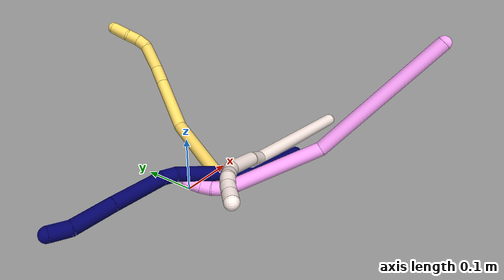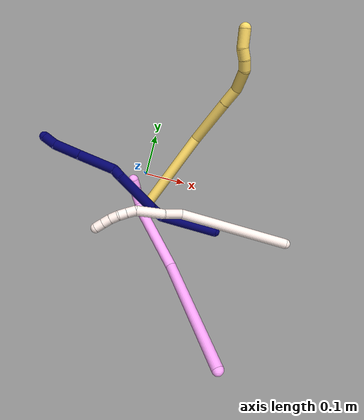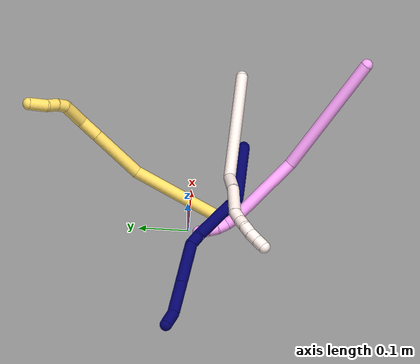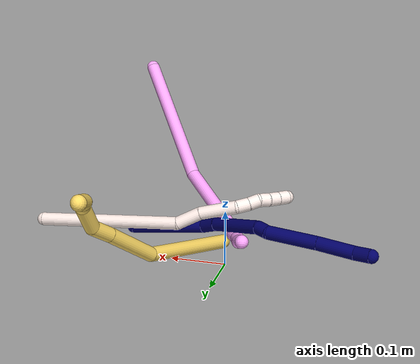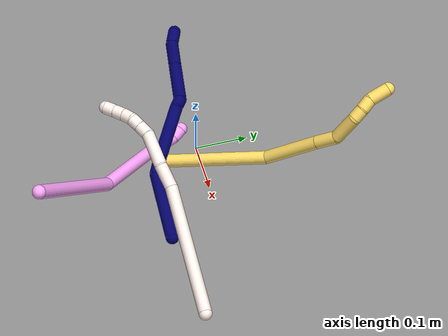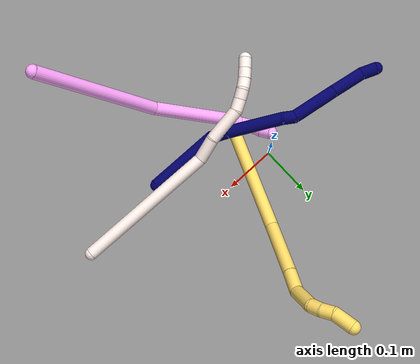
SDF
<sdf version="1.7">
 <world name="default">
  <model name="4">
   <static>0</static>
   <link name="4">
    <collision name="collision-cylinder-e_1_1_4">
     <pose>-0.043225 0.025258 -0.119558 -2.93339 -0.339998 2.04807</pose>
     <geometry><cylinder><radius>0.0125</radius><length>0.259233</length></cylinder></geometry>
     <surface>
      <friction><ode><mu>1.16</mu><mu2>1.16</mu2><slip1>0</slip1><slip2>0</slip2></ode></friction>
      <contact><ode><kp>1e+06</kp><kd>1</kd><max_vel>0</max_vel><min_depth>0.001</min_depth></ode></contact>
     </surface>
    </collision>
    <visual name="visual-cylinder-e_1_1_4">
     <pose>-0.043225 0.025258 -0.119558 -2.93339 -0.339998 2.04807</pose>
     <geometry><cylinder><radius>0.0125</radius><length>0.259233</length></cylinder></geometry>
     <material><ambient>1 0.65098 0.996078 1</ambient></material>
    </visual>
    <collision name="collision-cylinder-e_2_4_5">
     <pose>-0.110018 0.093093 -0.300253 -2.53328 -0.306372 0.914249</pose>
     <geometry><cylinder><radius>0.0125</radius><length>0.156281</length></cylinder></geometry>
     <surface>
      <friction><ode><mu>1.16</mu><mu2>1.16</mu2><slip1>0</slip1><slip2>0</slip2></ode></friction>
      <contact><ode><kp>1e+06</kp><kd>1</kd><max_vel>0</max_vel><min_depth>0.001</min_depth></ode></contact>
     </surface>
    </collision>
    <visual name="visual-cylinder-e_2_4_5">
     <pose>-0.110018 0.093093 -0.300253 -2.53328 -0.306372 0.914249</pose>
     <geometry><cylinder><radius>0.0125</radius><length>0.156281</length></cylinder></geometry>
     <material><ambient>1 0.65098 0.996078 1</ambient></material>
    </visual>
    <collision name="collision-cylinder-e_3_5_6">
     <pose>-0.134772 0.14065 -0.370079 -2.62107 -0.117951 0.436375</pose>
     <geometry><cylinder><radius>0.0125</radius><length>0.02017</length></cylinder></geometry>
     <surface>
      <friction><ode><mu>1.16</mu><mu2>1.16</mu2><slip1>0</slip1><slip2>0</slip2></ode></friction>
      <contact><ode><kp>1e+06</kp><kd>1</kd><max_vel>0</max_vel><min_depth>0.001</min_depth></ode></contact>
     </surface>
    </collision>
    <visual name="visual-cylinder-e_3_5_6">
     <pose>-0.134772 0.14065 -0.370079 -2.62107 -0.117951 0.436375</pose>
     <geometry><cylinder><radius>0.0125</radius><length>0.02017</length></cylinder></geometry>
     <material><ambient>1 0.65098 0.996078 1</ambient></material>
    </visual>
    <collision name="collision-cylinder-e_4_6_7">
     <pose>-0.136286 0.154871 -0.385651 -2.21098 -0.02836 0.056475</pose>
     <geometry><cylinder><radius>0.0125</radius><length>0.023053</length></cylinder></geometry>
     <surface>
      <friction><ode><mu>1.16</mu><mu2>1.16</mu2><slip1>0</slip1><slip2>0</slip2></ode></friction>
      <contact><ode><kp>1e+06</kp><kd>1</kd><max_vel>0</max_vel><min_depth>0.001</min_depth></ode></contact>
     </surface>
    </collision>
    <visual name="visual-cylinder-e_4_6_7">
     <pose>-0.136286 0.154871 -0.385651 -2.21098 -0.02836 0.056475</pose>
     <geometry><cylinder><radius>0.0125</radius><length>0.023053</length></cylinder></geometry>
     <material><ambient>1 0.65098 0.996078 1</ambient></material>
    </visual>
    <collision name="collision-cylinder-e_5_7_8">
     <pose>-0.134609 0.1719 -0.398523 -2.22642 0.201114 -0.404186</pose>
     <geometry><cylinder><radius>0.0125</radius><length>0.020055</length></cylinder></geometry>
     <surface>
      <friction><ode><mu>1.16</mu><mu2>1.16</mu2><slip1>0</slip1><slip2>0</slip2></ode></friction>
      <contact><ode><kp>1e+06</kp><kd>1</kd><max_vel>0</max_vel><min_depth>0.001</min_depth></ode></contact>
     </surface>
    </collision>
    <visual name="visual-cylinder-e_5_7_8">
     <pose>-0.134609 0.1719 -0.398523 -2.22642 0.201114 -0.404186</pose>
     <geometry><cylinder><radius>0.0125</radius><length>0.020055</length></cylinder></geometry>
     <material><ambient>1 0.65098 0.996078 1</ambient></material>
    </visual>
    <collision name="collision-cylinder-e_6_8_2">
     <pose>-0.131169 0.189663 -0.40781 -1.88997 0.135969 -0.18787</pose>
     <geometry><cylinder><radius>0.0125</radius><length>0.021207</length></cylinder></geometry>
     <surface>
      <friction><ode><mu>1.16</mu><mu2>1.16</mu2><slip1>0</slip1><slip2>0</slip2></ode></friction>
      <contact><ode><kp>1e+06</kp><kd>1</kd><max_vel>0</max_vel><min_depth>0.001</min_depth></ode></contact>
     </surface>
    </collision>
    <visual name="visual-cylinder-e_6_8_2">
     <pose>-0.131169 0.189663 -0.40781 -1.88997 0.135969 -0.18787</pose>
     <geometry><cylinder><radius>0.0125</radius><length>0.021207</length></cylinder></geometry>
     <material><ambient>1 0.65098 0.996078 1</ambient></material>
    </visual>
    <collision name="collision-sphere-2">
     <pose>-0.129732 0.199638 -0.411106 0 -0 0</pose>
     <geometry><sphere><radius>0.0125</radius></sphere></geometry>
     <surface>
      <friction><ode><mu>1.16</mu><mu2>1.16</mu2><slip1>0</slip1><slip2>0</slip2></ode></friction>
      <contact><ode><kp>1e+06</kp><kd>1</kd><max_vel>0</max_vel><min_depth>0.001</min_depth></ode></contact>
     </surface>
    </collision>
    <visual name="visual-sphere-2">
     <pose>-0.129732 0.199638 -0.411106 0 -0 0</pose>
     <geometry><sphere><radius>0.0125</radius></sphere></geometry>
     <material><ambient>1 0.65098 0.996078 1</ambient></material>
    </visual>
    <collision name="collision-sphere-4">
     <pose>-0.08645 0.050517 -0.239116 0 -0 0</pose>
     <geometry><sphere><radius>0.0125</radius></sphere></geometry>
     <surface>
      <friction><ode><mu>1.16</mu><mu2>1.16</mu2><slip1>0</slip1><slip2>0</slip2></ode></friction>
      <contact><ode><kp>1e+06</kp><kd>1</kd><max_vel>0</max_vel><min_depth>0.001</min_depth></ode></contact>
     </surface>
    </collision>
    <visual name="visual-sphere-4">
     <pose>-0.08645 0.050517 -0.239116 0 -0 0</pose>
     <geometry><sphere><radius>0.0125</radius></sphere></geometry>
     <material><ambient>1 0.65098 0.996078 1</ambient></material>
    </visual>
    <collision name="collision-sphere-1">
     <geometry><sphere><radius>0.0125</radius></sphere></geometry>
     <surface>
      <friction><ode><mu>1.16</mu><mu2>1.16</mu2><slip1>0</slip1><slip2>0</slip2></ode></friction>
      <contact><ode><kp>1e+06</kp><kd>1</kd><max_vel>0</max_vel><min_depth>0.001</min_depth></ode></contact>
     </surface>
    </collision>
    <visual name="visual-sphere-1">
     <geometry><sphere><radius>0.0125</radius></sphere></geometry>
     <material><ambient>1 0.65098 0.996078 1</ambient></material>
    </visual>
    <collision name="collision-sphere-8">
     <pose>-0.132606 0.179688 -0.404513 0 -0 0</pose>
     <geometry><sphere><radius>0.0125</radius></sphere></geometry>
     <surface>
      <friction><ode><mu>1.16</mu><mu2>1.16</mu2><slip1>0</slip1><slip2>0</slip2></ode></friction>
      <contact><ode><kp>1e+06</kp><kd>1</kd><max_vel>0</max_vel><min_depth>0.001</min_depth></ode></contact>
     </surface>
    </collision>
    <visual name="visual-sphere-8">
     <pose>-0.132606 0.179688 -0.404513 0 -0 0</pose>
     <geometry><sphere><radius>0.0125</radius></sphere></geometry>
     <material><ambient>1 0.65098 0.996078 1</ambient></material>
    </visual>
    <collision name="collision-sphere-5">
     <pose>-0.133585 0.135669 -0.361391 0 -0 0</pose>
     <geometry><sphere><radius>0.0125</radius></sphere></geometry>
     <surface>
      <friction><ode><mu>1.16</mu><mu2>1.16</mu2><slip1>0</slip1><slip2>0</slip2></ode></friction>
      <contact><ode><kp>1e+06</kp><kd>1</kd><max_vel>0</max_vel><min_depth>0.001</min_depth></ode></contact>
     </surface>
    </collision>
    <visual name="visual-sphere-5">
     <pose>-0.133585 0.135669 -0.361391 0 -0 0</pose>
     <geometry><sphere><radius>0.0125</radius></sphere></geometry>
     <material><ambient>1 0.65098 0.996078 1</ambient></material>
    </visual>
    <collision name="collision-sphere-6">
     <pose>-0.135959 0.145631 -0.378768 0 -0 0</pose>
     <geometry><sphere><radius>0.0125</radius></sphere></geometry>
     <surface>
      <friction><ode><mu>1.16</mu><mu2>1.16</mu2><slip1>0</slip1><slip2>0</slip2></ode></friction>
      <contact><ode><kp>1e+06</kp><kd>1</kd><max_vel>0</max_vel><min_depth>0.001</min_depth></ode></contact>
     </surface>
    </collision>
    <visual name="visual-sphere-6">
     <pose>-0.135959 0.145631 -0.378768 0 -0 0</pose>
     <geometry><sphere><radius>0.0125</radius></sphere></geometry>
     <material><ambient>1 0.65098 0.996078 1</ambient></material>
    </visual>
    <collision name="collision-sphere-7">
     <pose>-0.136612 0.164112 -0.392533 0 -0 0</pose>
     <geometry><sphere><radius>0.0125</radius></sphere></geometry>
     <surface>
      <friction><ode><mu>1.16</mu><mu2>1.16</mu2><slip1>0</slip1><slip2>0</slip2></ode></friction>
      <contact><ode><kp>1e+06</kp><kd>1</kd><max_vel>0</max_vel><min_depth>0.001</min_depth></ode></contact>
     </surface>
    </collision>
    <visual name="visual-sphere-7">
     <pose>-0.136612 0.164112 -0.392533 0 -0 0</pose>
     <geometry><sphere><radius>0.0125</radius></sphere></geometry>
     <material><ambient>1 0.65098 0.996078 1</ambient></material>
    </visual>
    <inertial>
     <pose>-0.079481 0.069947 -0.221826 0 -0 0</pose>
     <mass>0.5</mass>
     <inertia><ixx>0.00102</ixx><ixy>0</ixy><ixz>0</ixz><iyy>0.002109</iyy><iyz>0</iyz><izz>8.6e-05</izz></inertia>
    </inertial>
   </link>
   <pose>0.242839 -0.339755 0.269644 0.658021 -0.306985 0.551234</pose>
  </model>
  <model name="5">
   <static>0</static>
   <link name="5">
    <collision name="collision-cylinder-e_1_1_4">
     <pose>-0.014872 0.02398 0.099134 -0.237331 -0.144793 0.017293</pose>
     <geometry><cylinder><radius>0.0125</radius><length>0.206144</length></cylinder></geometry>
     <surface>
      <friction><ode><mu>1.16</mu><mu2>1.16</mu2><slip1>0</slip1><slip2>0</slip2></ode></friction>
      <contact><ode><kp>1e+06</kp><kd>1</kd><max_vel>0</max_vel><min_depth>0.001</min_depth></ode></contact>
     </surface>
    </collision>
    <visual name="visual-cylinder-e_1_1_4">
     <pose>-0.014872 0.02398 0.099134 -0.237331 -0.144793 0.017293</pose>
     <geometry><cylinder><radius>0.0125</radius><length>0.206144</length></cylinder></geometry>
     <material><ambient>1 0.858824 0.4 1</ambient></material>
    </visual>
    <collision name="collision-cylinder-e_2_4_5">
     <pose>-0.015406 0.061562 0.251554 -0.249947 0.255045 -0.032213</pose>
     <geometry><cylinder><radius>0.0125</radius><length>0.113666</length></cylinder></geometry>
     <surface>
      <friction><ode><mu>1.16</mu><mu2>1.16</mu2><slip1>0</slip1><slip2>0</slip2></ode></friction>
      <contact><ode><kp>1e+06</kp><kd>1</kd><max_vel>0</max_vel><min_depth>0.001</min_depth></ode></contact>
     </surface>
    </collision>
    <visual name="visual-cylinder-e_2_4_5">
     <pose>-0.015406 0.061562 0.251554 -0.249947 0.255045 -0.032213</pose>
     <geometry><cylinder><radius>0.0125</radius><length>0.113666</length></cylinder></geometry>
     <material><ambient>1 0.858824 0.4 1</ambient></material>
    </visual>
    <collision name="collision-cylinder-e_3_5_6">
     <pose>0.003505 0.080648 0.324633 -0.270235 0.219067 -0.029899</pose>
     <geometry><cylinder><radius>0.0125</radius><length>0.042084</length></cylinder></geometry>
     <surface>
      <friction><ode><mu>1.16</mu><mu2>1.16</mu2><slip1>0</slip1><slip2>0</slip2></ode></friction>
      <contact><ode><kp>1e+06</kp><kd>1</kd><max_vel>0</max_vel><min_depth>0.001</min_depth></ode></contact>
     </surface>
    </collision>
    <visual name="visual-cylinder-e_3_5_6">
     <pose>0.003505 0.080648 0.324633 -0.270235 0.219067 -0.029899</pose>
     <geometry><cylinder><radius>0.0125</radius><length>0.042084</length></cylinder></geometry>
     <material><ambient>1 0.858824 0.4 1</ambient></material>
    </visual>
    <collision name="collision-cylinder-e_4_6_7">
     <pose>0.023867 0.08497 0.366745 0.051995 0.615087 0.016518</pose>
     <geometry><cylinder><radius>0.0125</radius><length>0.054726</length></cylinder></geometry>
     <surface>
      <friction><ode><mu>1.16</mu><mu2>1.16</mu2><slip1>0</slip1><slip2>0</slip2></ode></friction>
      <contact><ode><kp>1e+06</kp><kd>1</kd><max_vel>0</max_vel><min_depth>0.001</min_depth></ode></contact>
     </surface>
    </collision>
    <visual name="visual-cylinder-e_4_6_7">
     <pose>0.023867 0.08497 0.366745 0.051995 0.615087 0.016518</pose>
     <geometry><cylinder><radius>0.0125</radius><length>0.054726</length></cylinder></geometry>
     <material><ambient>1 0.858824 0.4 1</ambient></material>
    </visual>
    <collision name="collision-cylinder-e_5_7_8">
     <pose>0.042808 0.079197 0.398573 0.451467 0.289786 0.066993</pose>
     <geometry><cylinder><radius>0.0125</radius><length>0.022058</length></cylinder></geometry>
     <surface>
      <friction><ode><mu>1.16</mu><mu2>1.16</mu2><slip1>0</slip1><slip2>0</slip2></ode></friction>
      <contact><ode><kp>1e+06</kp><kd>1</kd><max_vel>0</max_vel><min_depth>0.001</min_depth></ode></contact>
     </surface>
    </collision>
    <visual name="visual-cylinder-e_5_7_8">
     <pose>0.042808 0.079197 0.398573 0.451467 0.289786 0.066993</pose>
     <geometry><cylinder><radius>0.0125</radius><length>0.022058</length></cylinder></geometry>
     <material><ambient>1 0.858824 0.4 1</ambient></material>
    </visual>
    <collision name="collision-cylinder-e_6_8_9">
     <pose>0.04786 0.067761 0.417451 0.629684 0.162551 0.053043</pose>
     <geometry><cylinder><radius>0.0125</radius><length>0.02349</length></cylinder></geometry>
     <surface>
      <friction><ode><mu>1.16</mu><mu2>1.16</mu2><slip1>0</slip1><slip2>0</slip2></ode></friction>
      <contact><ode><kp>1e+06</kp><kd>1</kd><max_vel>0</max_vel><min_depth>0.001</min_depth></ode></contact>
     </surface>
    </collision>
    <visual name="visual-cylinder-e_6_8_9">
     <pose>0.04786 0.067761 0.417451 0.629684 0.162551 0.053043</pose>
     <geometry><cylinder><radius>0.0125</radius><length>0.02349</length></cylinder></geometry>
     <material><ambient>1 0.858824 0.4 1</ambient></material>
    </visual>
    <collision name="collision-cylinder-e_7_9_2">
     <pose>0.049256 0.055109 0.444807 0.313256 -0.026686 -0.004215</pose>
     <geometry><cylinder><radius>0.0125</radius><length>0.037833</length></cylinder></geometry>
     <surface>
      <friction><ode><mu>1.16</mu><mu2>1.16</mu2><slip1>0</slip1><slip2>0</slip2></ode></friction>
      <contact><ode><kp>1e+06</kp><kd>1</kd><max_vel>0</max_vel><min_depth>0.001</min_depth></ode></contact>
     </surface>
    </collision>
    <visual name="visual-cylinder-e_7_9_2">
     <pose>0.049256 0.055109 0.444807 0.313256 -0.026686 -0.004215</pose>
     <geometry><cylinder><radius>0.0125</radius><length>0.037833</length></cylinder></geometry>
     <material><ambient>1 0.858824 0.4 1</ambient></material>
    </visual>
    <collision name="collision-sphere-2">
     <pose>0.048752 0.049281 0.462796 0 -0 0</pose>
     <geometry><sphere><radius>0.0125</radius></sphere></geometry>
     <surface>
      <friction><ode><mu>1.16</mu><mu2>1.16</mu2><slip1>0</slip1><slip2>0</slip2></ode></friction>
      <contact><ode><kp>1e+06</kp><kd>1</kd><max_vel>0</max_vel><min_depth>0.001</min_depth></ode></contact>
     </surface>
    </collision>
    <visual name="visual-sphere-2">
     <pose>0.048752 0.049281 0.462796 0 -0 0</pose>
     <geometry><sphere><radius>0.0125</radius></sphere></geometry>
     <material><ambient>1 0.858824 0.4 1</ambient></material>
    </visual>
    <collision name="collision-sphere-9">
     <pose>0.049761 0.060936 0.426818 0 -0 0</pose>
     <geometry><sphere><radius>0.0125</radius></sphere></geometry>
     <surface>
      <friction><ode><mu>1.16</mu><mu2>1.16</mu2><slip1>0</slip1><slip2>0</slip2></ode></friction>
      <contact><ode><kp>1e+06</kp><kd>1</kd><max_vel>0</max_vel><min_depth>0.001</min_depth></ode></contact>
     </surface>
    </collision>
    <visual name="visual-sphere-9">
     <pose>0.049761 0.060936 0.426818 0 -0 0</pose>
     <geometry><sphere><radius>0.0125</radius></sphere></geometry>
     <material><ambient>1 0.858824 0.4 1</ambient></material>
    </visual>
    <collision name="collision-sphere-4">
     <pose>-0.029744 0.047959 0.198269 0 -0 0</pose>
     <geometry><sphere><radius>0.0125</radius></sphere></geometry>
     <surface>
      <friction><ode><mu>1.16</mu><mu2>1.16</mu2><slip1>0</slip1><slip2>0</slip2></ode></friction>
      <contact><ode><kp>1e+06</kp><kd>1</kd><max_vel>0</max_vel><min_depth>0.001</min_depth></ode></contact>
     </surface>
    </collision>
    <visual name="visual-sphere-4">
     <pose>-0.029744 0.047959 0.198269 0 -0 0</pose>
     <geometry><sphere><radius>0.0125</radius></sphere></geometry>
     <material><ambient>1 0.858824 0.4 1</ambient></material>
    </visual>
    <collision name="collision-sphere-1">
     <geometry><sphere><radius>0.0125</radius></sphere></geometry>
     <surface>
      <friction><ode><mu>1.16</mu><mu2>1.16</mu2><slip1>0</slip1><slip2>0</slip2></ode></friction>
      <contact><ode><kp>1e+06</kp><kd>1</kd><max_vel>0</max_vel><min_depth>0.001</min_depth></ode></contact>
     </surface>
    </collision>
    <visual name="visual-sphere-1">
     <geometry><sphere><radius>0.0125</radius></sphere></geometry>
     <material><ambient>1 0.858824 0.4 1</ambient></material>
    </visual>
    <collision name="collision-sphere-8">
     <pose>0.04596 0.074586 0.408083 0 -0 0</pose>
     <geometry><sphere><radius>0.0125</radius></sphere></geometry>
     <surface>
      <friction><ode><mu>1.16</mu><mu2>1.16</mu2><slip1>0</slip1><slip2>0</slip2></ode></friction>
      <contact><ode><kp>1e+06</kp><kd>1</kd><max_vel>0</max_vel><min_depth>0.001</min_depth></ode></contact>
     </surface>
    </collision>
    <visual name="visual-sphere-8">
     <pose>0.04596 0.074586 0.408083 0 -0 0</pose>
     <geometry><sphere><radius>0.0125</radius></sphere></geometry>
     <material><ambient>1 0.858824 0.4 1</ambient></material>
    </visual>
    <collision name="collision-sphere-5">
     <pose>-0.001068 0.075165 0.30484 0 -0 0</pose>
     <geometry><sphere><radius>0.0125</radius></sphere></geometry>
     <surface>
      <friction><ode><mu>1.16</mu><mu2>1.16</mu2><slip1>0</slip1><slip2>0</slip2></ode></friction>
      <contact><ode><kp>1e+06</kp><kd>1</kd><max_vel>0</max_vel><min_depth>0.001</min_depth></ode></contact>
     </surface>
    </collision>
    <visual name="visual-sphere-5">
     <pose>-0.001068 0.075165 0.30484 0 -0 0</pose>
     <geometry><sphere><radius>0.0125</radius></sphere></geometry>
     <material><ambient>1 0.858824 0.4 1</ambient></material>
    </visual>
    <collision name="collision-sphere-6">
     <pose>0.008078 0.086131 0.344427 0 -0 0</pose>
     <geometry><sphere><radius>0.0125</radius></sphere></geometry>
     <surface>
      <friction><ode><mu>1.16</mu><mu2>1.16</mu2><slip1>0</slip1><slip2>0</slip2></ode></friction>
      <contact><ode><kp>1e+06</kp><kd>1</kd><max_vel>0</max_vel><min_depth>0.001</min_depth></ode></contact>
     </surface>
    </collision>
    <visual name="visual-sphere-6">
     <pose>0.008078 0.086131 0.344427 0 -0 0</pose>
     <geometry><sphere><radius>0.0125</radius></sphere></geometry>
     <material><ambient>1 0.858824 0.4 1</ambient></material>
    </visual>
    <collision name="collision-sphere-7">
     <pose>0.039657 0.083808 0.389063 0 -0 0</pose>
     <geometry><sphere><radius>0.0125</radius></sphere></geometry>
     <surface>
      <friction><ode><mu>1.16</mu><mu2>1.16</mu2><slip1>0</slip1><slip2>0</slip2></ode></friction>
      <contact><ode><kp>1e+06</kp><kd>1</kd><max_vel>0</max_vel><min_depth>0.001</min_depth></ode></contact>
     </surface>
    </collision>
    <visual name="visual-sphere-7">
     <pose>0.039657 0.083808 0.389063 0 -0 0</pose>
     <geometry><sphere><radius>0.0125</radius></sphere></geometry>
     <material><ambient>1 0.858824 0.4 1</ambient></material>
    </visual>
    <inertial>
     <pose>0.001138 0.050817 0.236374 0 -0 0</pose>
     <mass>0.5</mass>
     <inertia>
      <ixx>0.000896</ixx>
      <ixy>0</ixy>
      <ixz>0</ixz>
      <iyy>0.000886</iyy>
      <iyz>0</iyz>
      <izz>-0.000101</izz>
     </inertia>
    </inertial>
   </link>
   <pose>0.022838 -0.074807 0.011498 -0.001119 -1.2076 -1.72457</pose>
  </model>
  <model name="7">
   <static>0</static>
   <link name="7">
    <collision name="collision-cylinder-e_1_1_4">
     <pose>-0.048607 0.009438 -0.05071 -2.95759 -0.755734 2.68484</pose>
     <geometry><cylinder><radius>0.0125</radius><length>0.141749</length></cylinder></geometry>
     <surface>
      <friction><ode><mu>1.16</mu><mu2>1.16</mu2><slip1>0</slip1><slip2>0</slip2></ode></friction>
      <contact><ode><kp>1e+06</kp><kd>1</kd><max_vel>0</max_vel><min_depth>0.001</min_depth></ode></contact>
     </surface>
    </collision>
    <visual name="visual-cylinder-e_1_1_4">
     <pose>-0.048607 0.009438 -0.05071 -2.95759 -0.755734 2.68484</pose>
     <geometry><cylinder><radius>0.0125</radius><length>0.141749</length></cylinder></geometry>
     <material><ambient>0.003922 0 0.403922 1</ambient></material>
    </visual>
    <collision name="collision-cylinder-e_2_4_5">
     <pose>-0.111299 0.027722 -0.107882 -2.20166 -0.909671 1.53291</pose>
     <geometry><cylinder><radius>0.0125</radius><length>0.035687</length></cylinder></geometry>
     <surface>
      <friction><ode><mu>1.16</mu><mu2>1.16</mu2><slip1>0</slip1><slip2>0</slip2></ode></friction>
      <contact><ode><kp>1e+06</kp><kd>1</kd><max_vel>0</max_vel><min_depth>0.001</min_depth></ode></contact>
     </surface>
    </collision>
    <visual name="visual-cylinder-e_2_4_5">
     <pose>-0.111299 0.027722 -0.107882 -2.20166 -0.909671 1.53291</pose>
     <geometry><cylinder><radius>0.0125</radius><length>0.035687</length></cylinder></geometry>
     <material><ambient>0.003922 0 0.403922 1</ambient></material>
    </visual>
    <collision name="collision-cylinder-e_3_5_6">
     <pose>-0.163004 0.067209 -0.138942 -2.24725 -0.76369 1.39418</pose>
     <geometry><cylinder><radius>0.0125</radius><length>0.108797</length></cylinder></geometry>
     <surface>
      <friction><ode><mu>1.16</mu><mu2>1.16</mu2><slip1>0</slip1><slip2>0</slip2></ode></friction>
      <contact><ode><kp>1e+06</kp><kd>1</kd><max_vel>0</max_vel><min_depth>0.001</min_depth></ode></contact>
     </surface>
    </collision>
    <visual name="visual-cylinder-e_3_5_6">
     <pose>-0.163004 0.067209 -0.138942 -2.24725 -0.76369 1.39418</pose>
     <geometry><cylinder><radius>0.0125</radius><length>0.108797</length></cylinder></geometry>
     <material><ambient>0.003922 0 0.403922 1</ambient></material>
    </visual>
    <collision name="collision-cylinder-e_4_6_7">
     <pose>-0.205915 0.105553 -0.170932 -2.33547 -0.459932 1.00418</pose>
     <geometry><cylinder><radius>0.0125</radius><length>0.023832</length></cylinder></geometry>
     <surface>
      <friction><ode><mu>1.16</mu><mu2>1.16</mu2><slip1>0</slip1><slip2>0</slip2></ode></friction>
      <contact><ode><kp>1e+06</kp><kd>1</kd><max_vel>0</max_vel><min_depth>0.001</min_depth></ode></contact>
     </surface>
    </collision>
    <visual name="visual-cylinder-e_4_6_7">
     <pose>-0.205915 0.105553 -0.170932 -2.33547 -0.459932 1.00418</pose>
     <geometry><cylinder><radius>0.0125</radius><length>0.023832</length></cylinder></geometry>
     <material><ambient>0.003922 0 0.403922 1</ambient></material>
    </visual>
    <collision name="collision-cylinder-e_5_7_8">
     <pose>-0.236108 0.125417 -0.214607 -2.81825 -0.576938 2.13652</pose>
     <geometry><cylinder><radius>0.0125</radius><length>0.091312</length></cylinder></geometry>
     <surface>
      <friction><ode><mu>1.16</mu><mu2>1.16</mu2><slip1>0</slip1><slip2>0</slip2></ode></friction>
      <contact><ode><kp>1e+06</kp><kd>1</kd><max_vel>0</max_vel><min_depth>0.001</min_depth></ode></contact>
     </surface>
    </collision>
    <visual name="visual-cylinder-e_5_7_8">
     <pose>-0.236108 0.125417 -0.214607 -2.81825 -0.576938 2.13652</pose>
     <geometry><cylinder><radius>0.0125</radius><length>0.091312</length></cylinder></geometry>
     <material><ambient>0.003922 0 0.403922 1</ambient></material>
    </visual>
    <collision name="collision-cylinder-e_6_8_9">
     <pose>-0.27816 0.146928 -0.278165 -2.81123 -0.536545 2.05137</pose>
     <geometry><cylinder><radius>0.0125</radius><length>0.067097</length></cylinder></geometry>
     <surface>
      <friction><ode><mu>1.16</mu><mu2>1.16</mu2><slip1>0</slip1><slip2>0</slip2></ode></friction>
      <contact><ode><kp>1e+06</kp><kd>1</kd><max_vel>0</max_vel><min_depth>0.001</min_depth></ode></contact>
     </surface>
    </collision>
    <visual name="visual-cylinder-e_6_8_9">
     <pose>-0.27816 0.146928 -0.278165 -2.81123 -0.536545 2.05137</pose>
     <geometry><cylinder><radius>0.0125</radius><length>0.067097</length></cylinder></geometry>
     <material><ambient>0.003922 0 0.403922 1</ambient></material>
    </visual>
    <collision name="collision-cylinder-e_7_9_2">
     <pose>-0.305103 0.163858 -0.315194 -2.48122 -0.670409 1.58705</pose>
     <geometry><cylinder><radius>0.0125</radius><length>0.031526</length></cylinder></geometry>
     <surface>
      <friction><ode><mu>1.16</mu><mu2>1.16</mu2><slip1>0</slip1><slip2>0</slip2></ode></friction>
      <contact><ode><kp>1e+06</kp><kd>1</kd><max_vel>0</max_vel><min_depth>0.001</min_depth></ode></contact>
     </surface>
    </collision>
    <visual name="visual-cylinder-e_7_9_2">
     <pose>-0.305103 0.163858 -0.315194 -2.48122 -0.670409 1.58705</pose>
     <geometry><cylinder><radius>0.0125</radius><length>0.031526</length></cylinder></geometry>
     <material><ambient>0.003922 0 0.403922 1</ambient></material>
    </visual>
    <collision name="collision-sphere-2">
     <pose>-0.314897 0.171435 -0.324949 0 -0 0</pose>
     <geometry><sphere><radius>0.0125</radius></sphere></geometry>
     <surface>
      <friction><ode><mu>1.16</mu><mu2>1.16</mu2><slip1>0</slip1><slip2>0</slip2></ode></friction>
      <contact><ode><kp>1e+06</kp><kd>1</kd><max_vel>0</max_vel><min_depth>0.001</min_depth></ode></contact>
     </surface>
    </collision>
    <visual name="visual-sphere-2">
     <pose>-0.314897 0.171435 -0.324949 0 -0 0</pose>
     <geometry><sphere><radius>0.0125</radius></sphere></geometry>
     <material><ambient>0.003922 0 0.403922 1</ambient></material>
    </visual>
    <collision name="collision-sphere-9">
     <pose>-0.295309 0.156282 -0.30544 0 -0 0</pose>
     <geometry><sphere><radius>0.0125</radius></sphere></geometry>
     <surface>
      <friction><ode><mu>1.16</mu><mu2>1.16</mu2><slip1>0</slip1><slip2>0</slip2></ode></friction>
      <contact><ode><kp>1e+06</kp><kd>1</kd><max_vel>0</max_vel><min_depth>0.001</min_depth></ode></contact>
     </surface>
    </collision>
    <visual name="visual-sphere-9">
     <pose>-0.295309 0.156282 -0.30544 0 -0 0</pose>
     <geometry><sphere><radius>0.0125</radius></sphere></geometry>
     <material><ambient>0.003922 0 0.403922 1</ambient></material>
    </visual>
    <collision name="collision-sphere-4">
     <pose>-0.097215 0.018875 -0.101419 0 -0 0</pose>
     <geometry><sphere><radius>0.0125</radius></sphere></geometry>
     <surface>
      <friction><ode><mu>1.16</mu><mu2>1.16</mu2><slip1>0</slip1><slip2>0</slip2></ode></friction>
      <contact><ode><kp>1e+06</kp><kd>1</kd><max_vel>0</max_vel><min_depth>0.001</min_depth></ode></contact>
     </surface>
    </collision>
    <visual name="visual-sphere-4">
     <pose>-0.097215 0.018875 -0.101419 0 -0 0</pose>
     <geometry><sphere><radius>0.0125</radius></sphere></geometry>
     <material><ambient>0.003922 0 0.403922 1</ambient></material>
    </visual>
    <collision name="collision-sphere-1">
     <geometry><sphere><radius>0.0125</radius></sphere></geometry>
     <surface>
      <friction><ode><mu>1.16</mu><mu2>1.16</mu2><slip1>0</slip1><slip2>0</slip2></ode></friction>
      <contact><ode><kp>1e+06</kp><kd>1</kd><max_vel>0</max_vel><min_depth>0.001</min_depth></ode></contact>
     </surface>
    </collision>
    <visual name="visual-sphere-1">
     <geometry><sphere><radius>0.0125</radius></sphere></geometry>
     <material><ambient>0.003922 0 0.403922 1</ambient></material>
    </visual>
    <collision name="collision-sphere-8">
     <pose>-0.261011 0.137575 -0.250889 0 -0 0</pose>
     <geometry><sphere><radius>0.0125</radius></sphere></geometry>
     <surface>
      <friction><ode><mu>1.16</mu><mu2>1.16</mu2><slip1>0</slip1><slip2>0</slip2></ode></friction>
      <contact><ode><kp>1e+06</kp><kd>1</kd><max_vel>0</max_vel><min_depth>0.001</min_depth></ode></contact>
     </surface>
    </collision>
    <visual name="visual-sphere-8">
     <pose>-0.261011 0.137575 -0.250889 0 -0 0</pose>
     <geometry><sphere><radius>0.0125</radius></sphere></geometry>
     <material><ambient>0.003922 0 0.403922 1</ambient></material>
    </visual>
    <collision name="collision-sphere-5">
     <pose>-0.125383 0.036569 -0.114344 0 -0 0</pose>
     <geometry><sphere><radius>0.0125</radius></sphere></geometry>
     <surface>
      <friction><ode><mu>1.16</mu><mu2>1.16</mu2><slip1>0</slip1><slip2>0</slip2></ode></friction>
      <contact><ode><kp>1e+06</kp><kd>1</kd><max_vel>0</max_vel><min_depth>0.001</min_depth></ode></contact>
     </surface>
    </collision>
    <visual name="visual-sphere-5">
     <pose>-0.125383 0.036569 -0.114344 0 -0 0</pose>
     <geometry><sphere><radius>0.0125</radius></sphere></geometry>
     <material><ambient>0.003922 0 0.403922 1</ambient></material>
    </visual>
    <collision name="collision-sphere-6">
     <pose>-0.200626 0.097848 -0.163539 0 -0 0</pose>
     <geometry><sphere><radius>0.0125</radius></sphere></geometry>
     <surface>
      <friction><ode><mu>1.16</mu><mu2>1.16</mu2><slip1>0</slip1><slip2>0</slip2></ode></friction>
      <contact><ode><kp>1e+06</kp><kd>1</kd><max_vel>0</max_vel><min_depth>0.001</min_depth></ode></contact>
     </surface>
    </collision>
    <visual name="visual-sphere-6">
     <pose>-0.200626 0.097848 -0.163539 0 -0 0</pose>
     <geometry><sphere><radius>0.0125</radius></sphere></geometry>
     <material><ambient>0.003922 0 0.403922 1</ambient></material>
    </visual>
    <collision name="collision-sphere-7">
     <pose>-0.211205 0.113258 -0.178324 0 -0 0</pose>
     <geometry><sphere><radius>0.0125</radius></sphere></geometry>
     <surface>
      <friction><ode><mu>1.16</mu><mu2>1.16</mu2><slip1>0</slip1><slip2>0</slip2></ode></friction>
      <contact><ode><kp>1e+06</kp><kd>1</kd><max_vel>0</max_vel><min_depth>0.001</min_depth></ode></contact>
     </surface>
    </collision>
    <visual name="visual-sphere-7">
     <pose>-0.211205 0.113258 -0.178324 0 -0 0</pose>
     <geometry><sphere><radius>0.0125</radius></sphere></geometry>
     <material><ambient>0.003922 0 0.403922 1</ambient></material>
    </visual>
    <inertial>
     <pose>-0.166691 0.077262 -0.15685 0 -0 0</pose>
     <mass>0.5</mass>
     <inertia><ixx>2.4e-05</ixx><ixy>0</ixy><ixz>0</ixz><iyy>0.000586</iyy><iyz>0</iyz><izz>0.00015</izz></inertia>
    </inertial>
   </link>
   <pose>0.2065 -0.100483 0.011479 -0.216933 0.94073 -0.058263</pose>
  </model>
  <model name="11">
   <static>0</static>
   <link name="11">
    <collision name="collision-cylinder-e_1_1_4">
     <pose>-0.061561 -0.084369 0.091323 0.745838 -0.45975 -0.182593</pose>
     <geometry><cylinder><radius>0.0125</radius><length>0.277472</length></cylinder></geometry>
     <surface>
      <friction><ode><mu>1.16</mu><mu2>1.16</mu2><slip1>0</slip1><slip2>0</slip2></ode></friction>
      <contact><ode><kp>1e+06</kp><kd>1</kd><max_vel>0</max_vel><min_depth>0.001</min_depth></ode></contact>
     </surface>
    </collision>
    <visual name="visual-cylinder-e_1_1_4">
     <pose>-0.061561 -0.084369 0.091323 0.745838 -0.45975 -0.182593</pose>
     <geometry><cylinder><radius>0.0125</radius><length>0.277472</length></cylinder></geometry>
     <material><ambient>1 0.933333 0.909804 1</ambient></material>
    </visual>
    <collision name="collision-cylinder-e_2_4_5">
     <pose>-0.129099 -0.189719 0.191413 1.17498 -0.25705 -0.171703</pose>
     <geometry><cylinder><radius>0.0125</radius><length>0.047024</length></cylinder></geometry>
     <surface>
      <friction><ode><mu>1.16</mu><mu2>1.16</mu2><slip1>0</slip1><slip2>0</slip2></ode></friction>
      <contact><ode><kp>1e+06</kp><kd>1</kd><max_vel>0</max_vel><min_depth>0.001</min_depth></ode></contact>
     </surface>
    </collision>
    <visual name="visual-cylinder-e_2_4_5">
     <pose>-0.129099 -0.189719 0.191413 1.17498 -0.25705 -0.171703</pose>
     <geometry><cylinder><radius>0.0125</radius><length>0.047024</length></cylinder></geometry>
     <material><ambient>1 0.933333 0.909804 1</ambient></material>
    </visual>
    <collision name="collision-cylinder-e_3_5_6">
     <pose>-0.148778 -0.237345 0.21852 0.967972 -0.400691 -0.212697</pose>
     <geometry><cylinder><radius>0.0125</radius><length>0.070257</length></cylinder></geometry>
     <surface>
      <friction><ode><mu>1.16</mu><mu2>1.16</mu2><slip1>0</slip1><slip2>0</slip2></ode></friction>
      <contact><ode><kp>1e+06</kp><kd>1</kd><max_vel>0</max_vel><min_depth>0.001</min_depth></ode></contact>
     </surface>
    </collision>
    <visual name="visual-cylinder-e_3_5_6">
     <pose>-0.148778 -0.237345 0.21852 0.967972 -0.400691 -0.212697</pose>
     <geometry><cylinder><radius>0.0125</radius><length>0.070257</length></cylinder></geometry>
     <material><ambient>1 0.933333 0.909804 1</ambient></material>
    </visual>
    <collision name="collision-cylinder-e_4_6_7">
     <pose>-0.169221 -0.273519 0.238915 1.35833 -0.604975 -0.493575</pose>
     <geometry><cylinder><radius>0.0125</radius><length>0.023704</length></cylinder></geometry>
     <surface>
      <friction><ode><mu>1.16</mu><mu2>1.16</mu2><slip1>0</slip1><slip2>0</slip2></ode></friction>
      <contact><ode><kp>1e+06</kp><kd>1</kd><max_vel>0</max_vel><min_depth>0.001</min_depth></ode></contact>
     </surface>
    </collision>
    <visual name="visual-cylinder-e_4_6_7">
     <pose>-0.169221 -0.273519 0.238915 1.35833 -0.604975 -0.493575</pose>
     <geometry><cylinder><radius>0.0125</radius><length>0.023704</length></cylinder></geometry>
     <material><ambient>1 0.933333 0.909804 1</ambient></material>
    </visual>
    <collision name="collision-cylinder-e_5_7_8">
     <pose>-0.180948 -0.291784 0.242252 1.42516 -0.514117 -0.446681</pose>
     <geometry><cylinder><radius>0.0125</radius><length>0.02028</length></cylinder></geometry>
     <surface>
      <friction><ode><mu>1.16</mu><mu2>1.16</mu2><slip1>0</slip1><slip2>0</slip2></ode></friction>
      <contact><ode><kp>1e+06</kp><kd>1</kd><max_vel>0</max_vel><min_depth>0.001</min_depth></ode></contact>
     </surface>
    </collision>
    <visual name="visual-cylinder-e_5_7_8">
     <pose>-0.180948 -0.291784 0.242252 1.42516 -0.514117 -0.446681</pose>
     <geometry><cylinder><radius>0.0125</radius><length>0.02028</length></cylinder></geometry>
     <material><ambient>1 0.933333 0.909804 1</ambient></material>
    </visual>
    <collision name="collision-cylinder-e_6_8_9">
     <pose>-0.193651 -0.30688 0.244005 1.49682 -0.880072 -0.824356</pose>
     <geometry><cylinder><radius>0.0125</radius><length>0.020023</length></cylinder></geometry>
     <surface>
      <friction><ode><mu>1.16</mu><mu2>1.16</mu2><slip1>0</slip1><slip2>0</slip2></ode></friction>
      <contact><ode><kp>1e+06</kp><kd>1</kd><max_vel>0</max_vel><min_depth>0.001</min_depth></ode></contact>
     </surface>
    </collision>
    <visual name="visual-cylinder-e_6_8_9">
     <pose>-0.193651 -0.30688 0.244005 1.49682 -0.880072 -0.824356</pose>
     <geometry><cylinder><radius>0.0125</radius><length>0.020023</length></cylinder></geometry>
     <material><ambient>1 0.933333 0.909804 1</ambient></material>
    </visual>
    <collision name="collision-cylinder-e_7_9_10">
     <pose>-0.209124 -0.319885 0.243646 1.69505 -0.858618 -0.956708</pose>
     <geometry><cylinder><radius>0.0125</radius><length>0.020493</length></cylinder></geometry>
     <surface>
      <friction><ode><mu>1.16</mu><mu2>1.16</mu2><slip1>0</slip1><slip2>0</slip2></ode></friction>
      <contact><ode><kp>1e+06</kp><kd>1</kd><max_vel>0</max_vel><min_depth>0.001</min_depth></ode></contact>
     </surface>
    </collision>
    <visual name="visual-cylinder-e_7_9_10">
     <pose>-0.209124 -0.319885 0.243646 1.69505 -0.858618 -0.956708</pose>
     <geometry><cylinder><radius>0.0125</radius><length>0.020493</length></cylinder></geometry>
     <material><ambient>1 0.933333 0.909804 1</ambient></material>
    </visual>
    <collision name="collision-cylinder-e_8_10_2">
     <pose>-0.224658 -0.333326 0.241853 1.71158 -0.847747 -0.958543</pose>
     <geometry><cylinder><radius>0.0125</radius><length>0.020747</length></cylinder></geometry>
     <surface>
      <friction><ode><mu>1.16</mu><mu2>1.16</mu2><slip1>0</slip1><slip2>0</slip2></ode></friction>
      <contact><ode><kp>1e+06</kp><kd>1</kd><max_vel>0</max_vel><min_depth>0.001</min_depth></ode></contact>
     </surface>
    </collision>
    <visual name="visual-cylinder-e_8_10_2">
     <pose>-0.224658 -0.333326 0.241853 1.71158 -0.847747 -0.958543</pose>
     <geometry><cylinder><radius>0.0125</radius><length>0.020747</length></cylinder></geometry>
     <material><ambient>1 0.933333 0.909804 1</ambient></material>
    </visual>
    <collision name="collision-sphere-2">
     <pose>-0.232436 -0.340122 0.24089 0 -0 0</pose>
     <geometry><sphere><radius>0.0125</radius></sphere></geometry>
     <surface>
      <friction><ode><mu>1.16</mu><mu2>1.16</mu2><slip1>0</slip1><slip2>0</slip2></ode></friction>
      <contact><ode><kp>1e+06</kp><kd>1</kd><max_vel>0</max_vel><min_depth>0.001</min_depth></ode></contact>
     </surface>
    </collision>
    <visual name="visual-sphere-2">
     <pose>-0.232436 -0.340122 0.24089 0 -0 0</pose>
     <geometry><sphere><radius>0.0125</radius></sphere></geometry>
     <material><ambient>1 0.933333 0.909804 1</ambient></material>
    </visual>
    <collision name="collision-sphere-10">
     <pose>-0.21688 -0.32653 0.242816 0 -0 0</pose>
     <geometry><sphere><radius>0.0125</radius></sphere></geometry>
     <surface>
      <friction><ode><mu>1.16</mu><mu2>1.16</mu2><slip1>0</slip1><slip2>0</slip2></ode></friction>
      <contact><ode><kp>1e+06</kp><kd>1</kd><max_vel>0</max_vel><min_depth>0.001</min_depth></ode></contact>
     </surface>
    </collision>
    <visual name="visual-sphere-10">
     <pose>-0.21688 -0.32653 0.242816 0 -0 0</pose>
     <geometry><sphere><radius>0.0125</radius></sphere></geometry>
     <material><ambient>1 0.933333 0.909804 1</ambient></material>
    </visual>
    <collision name="collision-sphere-9">
     <pose>-0.201368 -0.313241 0.244476 0 -0 0</pose>
     <geometry><sphere><radius>0.0125</radius></sphere></geometry>
     <surface>
      <friction><ode><mu>1.16</mu><mu2>1.16</mu2><slip1>0</slip1><slip2>0</slip2></ode></friction>
      <contact><ode><kp>1e+06</kp><kd>1</kd><max_vel>0</max_vel><min_depth>0.001</min_depth></ode></contact>
     </surface>
    </collision>
    <visual name="visual-sphere-9">
     <pose>-0.201368 -0.313241 0.244476 0 -0 0</pose>
     <geometry><sphere><radius>0.0125</radius></sphere></geometry>
     <material><ambient>1 0.933333 0.909804 1</ambient></material>
    </visual>
    <collision name="collision-sphere-4">
     <pose>-0.123121 -0.168738 0.182646 0 -0 0</pose>
     <geometry><sphere><radius>0.0125</radius></sphere></geometry>
     <surface>
      <friction><ode><mu>1.16</mu><mu2>1.16</mu2><slip1>0</slip1><slip2>0</slip2></ode></friction>
      <contact><ode><kp>1e+06</kp><kd>1</kd><max_vel>0</max_vel><min_depth>0.001</min_depth></ode></contact>
     </surface>
    </collision>
    <visual name="visual-sphere-4">
     <pose>-0.123121 -0.168738 0.182646 0 -0 0</pose>
     <geometry><sphere><radius>0.0125</radius></sphere></geometry>
     <material><ambient>1 0.933333 0.909804 1</ambient></material>
    </visual>
    <collision name="collision-sphere-1">
     <geometry><sphere><radius>0.0125</radius></sphere></geometry>
     <surface>
      <friction><ode><mu>1.16</mu><mu2>1.16</mu2><slip1>0</slip1><slip2>0</slip2></ode></friction>
      <contact><ode><kp>1e+06</kp><kd>1</kd><max_vel>0</max_vel><min_depth>0.001</min_depth></ode></contact>
     </surface>
    </collision>
    <visual name="visual-sphere-1">
     <geometry><sphere><radius>0.0125</radius></sphere></geometry>
     <material><ambient>1 0.933333 0.909804 1</ambient></material>
    </visual>
    <collision name="collision-sphere-8">
     <pose>-0.185934 -0.300519 0.243533 0 -0 0</pose>
     <geometry><sphere><radius>0.0125</radius></sphere></geometry>
     <surface>
      <friction><ode><mu>1.16</mu><mu2>1.16</mu2><slip1>0</slip1><slip2>0</slip2></ode></friction>
      <contact><ode><kp>1e+06</kp><kd>1</kd><max_vel>0</max_vel><min_depth>0.001</min_depth></ode></contact>
     </surface>
    </collision>
    <visual name="visual-sphere-8">
     <pose>-0.185934 -0.300519 0.243533 0 -0 0</pose>
     <geometry><sphere><radius>0.0125</radius></sphere></geometry>
     <material><ambient>1 0.933333 0.909804 1</ambient></material>
    </visual>
    <collision name="collision-sphere-5">
     <pose>-0.135076 -0.210701 0.200181 0 -0 0</pose>
     <geometry><sphere><radius>0.0125</radius></sphere></geometry>
     <surface>
      <friction><ode><mu>1.16</mu><mu2>1.16</mu2><slip1>0</slip1><slip2>0</slip2></ode></friction>
      <contact><ode><kp>1e+06</kp><kd>1</kd><max_vel>0</max_vel><min_depth>0.001</min_depth></ode></contact>
     </surface>
    </collision>
    <visual name="visual-sphere-5">
     <pose>-0.135076 -0.210701 0.200181 0 -0 0</pose>
     <geometry><sphere><radius>0.0125</radius></sphere></geometry>
     <material><ambient>1 0.933333 0.909804 1</ambient></material>
    </visual>
    <collision name="collision-sphere-6">
     <pose>-0.16248 -0.26399 0.236859 0 -0 0</pose>
     <geometry><sphere><radius>0.0125</radius></sphere></geometry>
     <surface>
      <friction><ode><mu>1.16</mu><mu2>1.16</mu2><slip1>0</slip1><slip2>0</slip2></ode></friction>
      <contact><ode><kp>1e+06</kp><kd>1</kd><max_vel>0</max_vel><min_depth>0.001</min_depth></ode></contact>
     </surface>
    </collision>
    <visual name="visual-sphere-6">
     <pose>-0.16248 -0.26399 0.236859 0 -0 0</pose>
     <geometry><sphere><radius>0.0125</radius></sphere></geometry>
     <material><ambient>1 0.933333 0.909804 1</ambient></material>
    </visual>
    <collision name="collision-sphere-7">
     <pose>-0.175961 -0.283048 0.24097 0 -0 0</pose>
     <geometry><sphere><radius>0.0125</radius></sphere></geometry>
     <surface>
      <friction><ode><mu>1.16</mu><mu2>1.16</mu2><slip1>0</slip1><slip2>0</slip2></ode></friction>
      <contact><ode><kp>1e+06</kp><kd>1</kd><max_vel>0</max_vel><min_depth>0.001</min_depth></ode></contact>
     </surface>
    </collision>
    <visual name="visual-sphere-7">
     <pose>-0.175961 -0.283048 0.24097 0 -0 0</pose>
     <geometry><sphere><radius>0.0125</radius></sphere></geometry>
     <material><ambient>1 0.933333 0.909804 1</ambient></material>
    </visual>
    <inertial>
     <pose>-0.108219 -0.162046 0.150331 0 -0 0</pose>
     <mass>0.5</mass>
     <inertia><ixx>0.0013</ixx><ixy>0</ixy><ixz>0</ixz><iyy>0.00109</iyy><iyz>0</iyz><izz>0.001962</izz></inertia>
    </inertial>
   </link>
   <pose>0.387663 -0.085674 0.012447 -1.65625 -0.768304 0.758475</pose>
  </model>
 </world>
</sdf>
